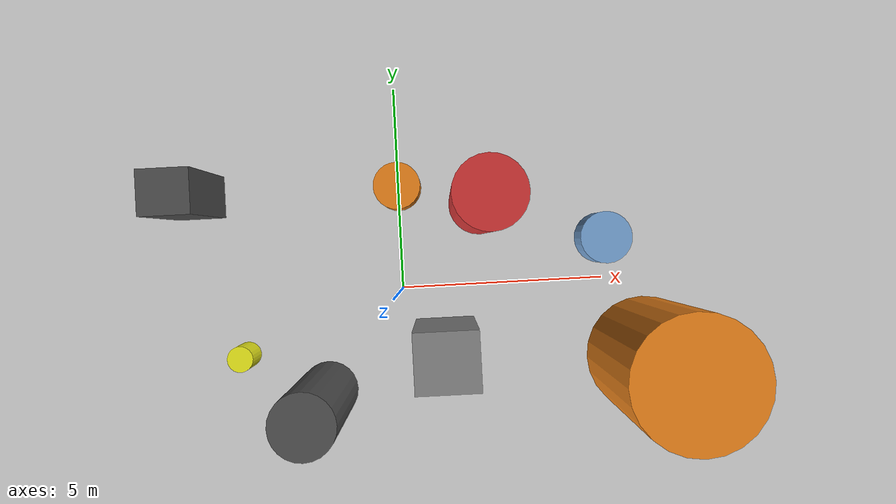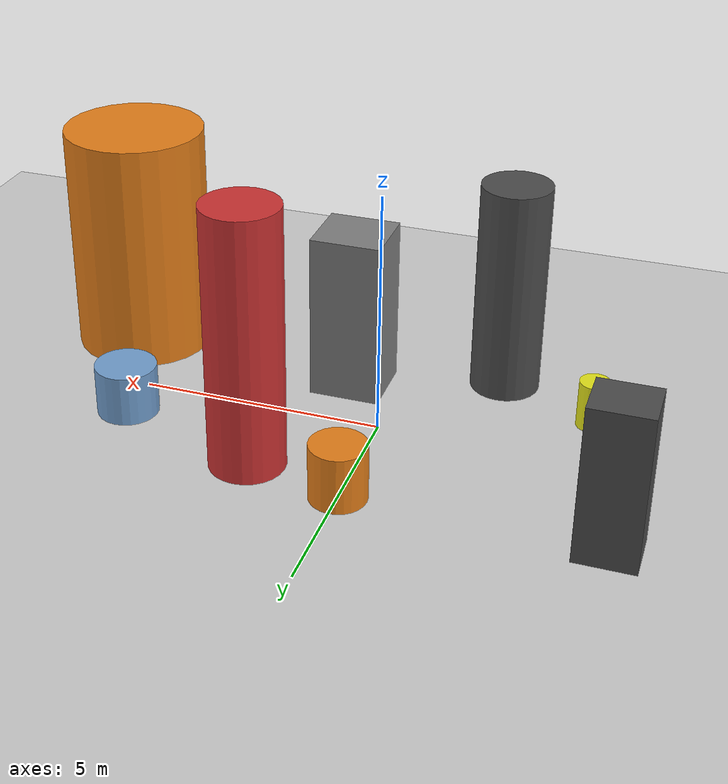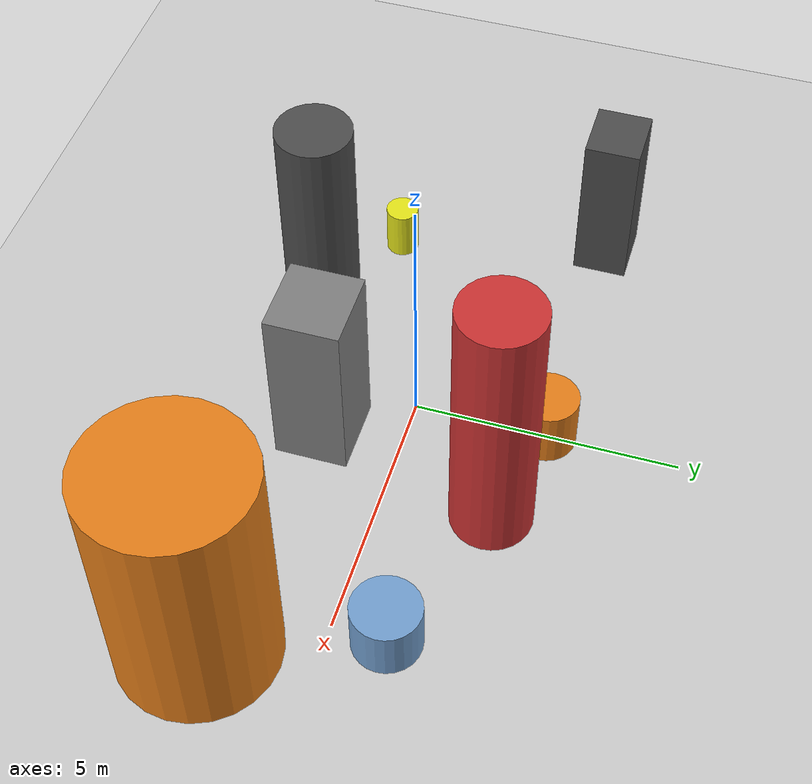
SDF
<?xml version='1.0'?>
<sdf version='1.6'>
  <world name='routeA_rl_v1__support_expansion__rl_train__mixed_3d_low_density_route__000129'>
    <!-- Sun light -->
    <light name='sun' type='directional'>
      <cast_shadows>1</cast_shadows>
      <pose>0 0 10 0 0 0</pose>
      <diffuse>0.8 0.8 0.8 1</diffuse>
      <specular>0.2 0.2 0.2 1</specular>
      <attenuation>
        <range>1000</range>
        <constant>0.9</constant>
        <linear>0.01</linear>
        <quadratic>0.001</quadratic>
      </attenuation>
      <direction>-0.5 0.1 -0.9</direction>
    </light>

    <!-- Ground plane -->
    <model name='ground_plane'>
      <static>1</static>
      <link name='link'>
        <collision name='collision'>
          <geometry>
            <plane>
              <normal>0 0 1</normal>
              <size>100 100</size>
            </plane>
          </geometry>
          <surface>
            <contact>
              <collide_bitmask>65535</collide_bitmask>
              <ode/>
            </contact>
            <friction>
              <ode>
                <mu>100</mu>
                <mu2>50</mu2>
              </ode>
              <torsional><ode/></torsional>
            </friction>
            <bounce/>
          </surface>
          <max_contacts>10</max_contacts>
        </collision>
        <visual name='visual'>
          <cast_shadows>0</cast_shadows>
          <geometry>
            <plane>
              <normal>0 0 1</normal>
              <size>100 100</size>
            </plane>
          </geometry>
          <material>
            <script>
              <uri>file://media/materials/scripts/gazebo.material</uri>
              <n>Gazebo/Grey</n>
            </script>
          </material>
        </visual>
      </link>
    </model>

    <!-- Environment -->
    <magnetic_field>6e-06 2.3e-05 -4.2e-05</magnetic_field>
    <atmosphere type='adiabatic'/>
    <physics name='default_physics' default='0' type='ode'>
      <gravity>0 0 -9.8</gravity>
      <max_step_size>0.004</max_step_size>
      <real_time_factor>1</real_time_factor>
      <real_time_update_rate>250</real_time_update_rate>
    </physics>
    <scene>
      <ambient>0.4 0.4 0.4 1</ambient>
      <background>0.7 0.7 0.7 1</background>
      <shadows>1</shadows>
    </scene>
    <wind/>
    <spherical_coordinates>
      <surface_model>EARTH_WGS84</surface_model>
      <latitude_deg>0</latitude_deg>
      <longitude_deg>0</longitude_deg>
      <elevation>0</elevation>
      <heading_deg>0</heading_deg>
    </spherical_coordinates>

    <!-- ============ OBSTACLES (8) ============ -->
    <model name='low_obs_0'>
      <static>1</static>
      <link name='link'>
        <visual name='visual'>
          <geometry>
            <cylinder>
              <radius>0.3154</radius>
              <length>1.0019</length>
            </cylinder>
          </geometry>
          <material>
            <script>
              <n>Gazebo/Yellow</n>
              <uri>file://media/materials/scripts/gazebo.material</uri>
            </script>
            <ambient>0.9 0.9 0.1 1</ambient>
          </material>
        </visual>
        <collision name='collision'>
          <geometry>
            <cylinder>
              <radius>0.3154</radius>
              <length>1.0019</length>
            </cylinder>
          </geometry>
          <max_contacts>10</max_contacts>
          <surface>
            <contact><ode/></contact>
            <bounce/>
            <friction>
              <ode><mu>1</mu><mu2>1</mu2></ode>
              <torsional><ode/></torsional>
            </friction>
          </surface>
        </collision>
      </link>
      <pose>-4.0000 -1.5000 0.5010 0 0 0.0000</pose>
    </model>

    <model name='low_obs_1'>
      <static>1</static>
      <link name='link'>
        <visual name='visual'>
          <geometry>
            <cylinder>
              <radius>0.5678</radius>
              <length>1.1615</length>
            </cylinder>
          </geometry>
          <material>
            <script>
              <n>Gazebo/Orange</n>
              <uri>file://media/materials/scripts/gazebo.material</uri>
            </script>
            <ambient>0.9 0.5 0.1 1</ambient>
          </material>
        </visual>
        <collision name='collision'>
          <geometry>
            <cylinder>
              <radius>0.5678</radius>
              <length>1.1615</length>
            </cylinder>
          </geometry>
          <max_contacts>10</max_contacts>
          <surface>
            <contact><ode/></contact>
            <bounce/>
            <friction>
              <ode><mu>1</mu><mu2>1</mu2></ode>
              <torsional><ode/></torsional>
            </friction>
          </surface>
        </collision>
      </link>
      <pose>0.0000 2.5000 0.5808 0 0 0.0000</pose>
    </model>

    <model name='low_obs_2'>
      <static>1</static>
      <link name='link'>
        <visual name='visual'>
          <geometry>
            <cylinder>
              <radius>0.6300</radius>
              <length>1.0546</length>
            </cylinder>
          </geometry>
          <material>
            <script>
              <n>Gazebo/Blue</n>
              <uri>file://media/materials/scripts/gazebo.material</uri>
            </script>
            <ambient>0.447 0.624 0.812 1</ambient>
          </material>
        </visual>
        <collision name='collision'>
          <geometry>
            <cylinder>
              <radius>0.6300</radius>
              <length>1.0546</length>
            </cylinder>
          </geometry>
          <max_contacts>10</max_contacts>
          <surface>
            <contact><ode/></contact>
            <bounce/>
            <friction>
              <ode><mu>1</mu><mu2>1</mu2></ode>
              <torsional><ode/></torsional>
            </friction>
          </surface>
        </collision>
      </link>
      <pose>5.0000 1.0000 0.5273 0 0 0.0000</pose>
    </model>

    <model name='tall_obs_0'>
      <static>1</static>
      <link name='link'>
        <visual name='visual'>
          <geometry>
            <cylinder>
              <radius>0.7199</radius>
              <length>4.5117</length>
            </cylinder>
          </geometry>
          <material>
            <script>
              <n>Gazebo/DarkGrey</n>
              <uri>file://media/materials/scripts/gazebo.material</uri>
            </script>
            <ambient>0.3 0.3 0.3 1</ambient>
          </material>
        </visual>
        <collision name='collision'>
          <geometry>
            <cylinder>
              <radius>0.7199</radius>
              <length>4.5117</length>
            </cylinder>
          </geometry>
          <max_contacts>10</max_contacts>
          <surface>
            <contact><ode/></contact>
            <bounce/>
            <friction>
              <ode><mu>1</mu><mu2>1</mu2></ode>
              <torsional><ode/></torsional>
            </friction>
          </surface>
        </collision>
      </link>
      <pose>-2.0000 -2.5000 2.2559 0 0 0.0000</pose>
    </model>

    <model name='tall_obs_1'>
      <static>1</static>
      <link name='link'>
        <visual name='visual'>
          <geometry>
            <cylinder>
              <radius>0.7639</radius>
              <length>5.4114</length>
            </cylinder>
          </geometry>
          <material>
            <script>
              <n>Gazebo/Red</n>
              <uri>file://media/materials/scripts/gazebo.material</uri>
            </script>
            <ambient>0.8 0.2 0.2 1</ambient>
          </material>
        </visual>
        <collision name='collision'>
          <geometry>
            <cylinder>
              <radius>0.7639</radius>
              <length>5.4114</length>
            </cylinder>
          </geometry>
          <max_contacts>10</max_contacts>
          <surface>
            <contact><ode/></contact>
            <bounce/>
            <friction>
              <ode><mu>1</mu><mu2>1</mu2></ode>
              <torsional><ode/></torsional>
            </friction>
          </surface>
        </collision>
      </link>
      <pose>2.0000 2.0000 2.7057 0 0 0.0000</pose>
    </model>

    <model name='tall_obs_2'>
      <static>1</static>
      <link name='link'>
        <visual name='visual'>
          <geometry>
            <cylinder>
              <radius>1.4602</radius>
              <length>4.8804</length>
            </cylinder>
          </geometry>
          <material>
            <script>
              <n>Gazebo/Orange</n>
              <uri>file://media/materials/scripts/gazebo.material</uri>
            </script>
            <ambient>0.9 0.5 0.1 1</ambient>
          </material>
        </visual>
        <collision name='collision'>
          <geometry>
            <cylinder>
              <radius>1.4602</radius>
              <length>4.8804</length>
            </cylinder>
          </geometry>
          <max_contacts>10</max_contacts>
          <surface>
            <contact><ode/></contact>
            <bounce/>
            <friction>
              <ode><mu>1</mu><mu2>1</mu2></ode>
              <torsional><ode/></torsional>
            </friction>
          </surface>
        </collision>
      </link>
      <pose>6.0000 -2.0000 2.4402 0 0 0.0000</pose>
    </model>

    <model name='med_obs_0'>
      <static>1</static>
      <link name='link'>
        <visual name='visual'>
          <geometry>
            <box>
              <size>1.1770 1.0432 3.1488</size>
            </box>
          </geometry>
          <material>
            <script>
              <n>Gazebo/DarkGrey</n>
              <uri>file://media/materials/scripts/gazebo.material</uri>
            </script>
            <ambient>0.3 0.3 0.3 1</ambient>
          </material>
        </visual>
        <collision name='collision'>
          <geometry>
            <box>
              <size>1.1770 1.0432 3.1488</size>
            </box>
          </geometry>
          <max_contacts>10</max_contacts>
          <surface>
            <contact><ode/></contact>
            <bounce/>
            <friction>
              <ode><mu>1</mu><mu2>1</mu2></ode>
              <torsional><ode/></torsional>
            </friction>
          </surface>
        </collision>
      </link>
      <pose>-5.0000 2.5000 1.5744 0 0 0.0000</pose>
    </model>

    <model name='med_obs_1'>
      <static>1</static>
      <link name='link'>
        <visual name='visual'>
          <geometry>
            <box>
              <size>1.4555 1.3618 3.4911</size>
            </box>
          </geometry>
          <material>
            <script>
              <n>Gazebo/Grey</n>
              <uri>file://media/materials/scripts/gazebo.material</uri>
            </script>
            <ambient>0.5 0.5 0.5 1</ambient>
          </material>
        </visual>
        <collision name='collision'>
          <geometry>
            <box>
              <size>1.4555 1.3618 3.4911</size>
            </box>
          </geometry>
          <max_contacts>10</max_contacts>
          <surface>
            <contact><ode/></contact>
            <bounce/>
            <friction>
              <ode><mu>1</mu><mu2>1</mu2></ode>
              <torsional><ode/></torsional>
            </friction>
          </surface>
        </collision>
      </link>
      <pose>1.0000 -1.5000 1.7455 0 0 0.0000</pose>
    </model>

    <!-- GUI camera -->
    <gui fullscreen='0'>
      <camera name='user_camera'>
        <pose>-15 0 18 0 0.85 0.15</pose>
        <view_controller>orbit</view_controller>
        <projection_type>perspective</projection_type>
      </camera>
    </gui>
  </world>
</sdf>
